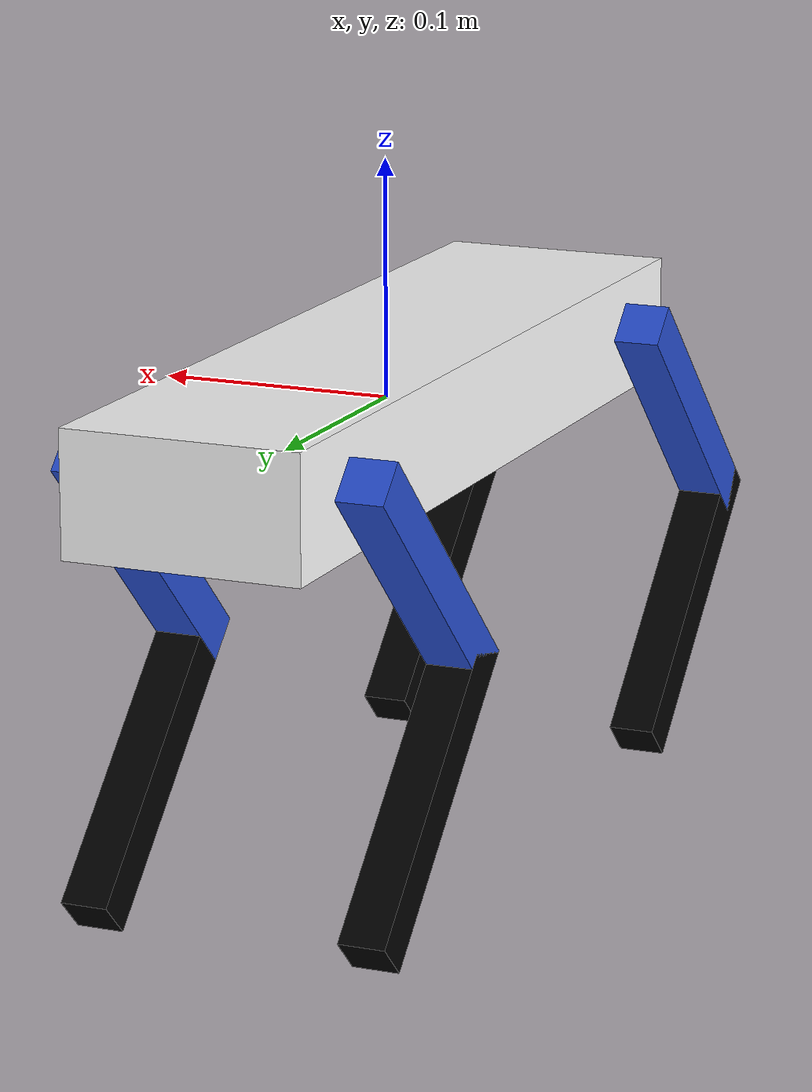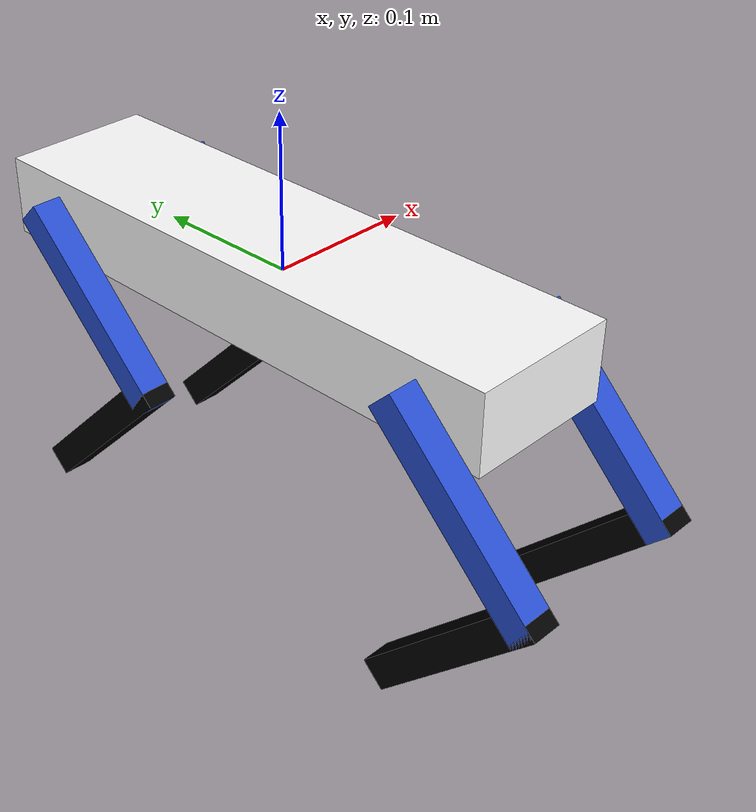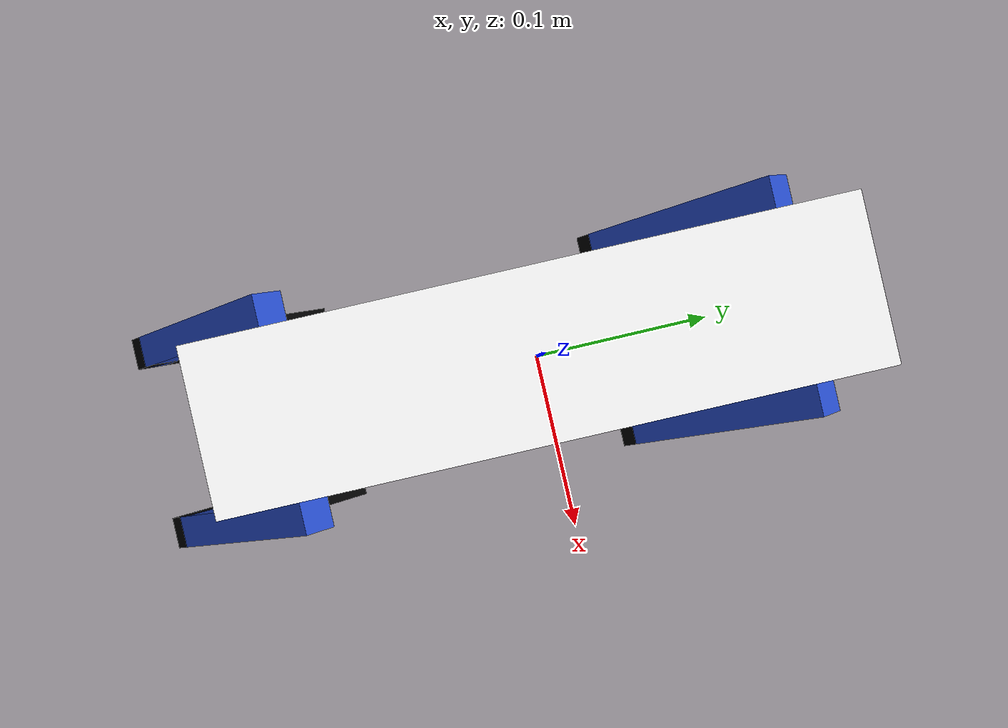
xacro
<?xml version="1.0"?>
<robot name="telos" xmlns:xacro="http://www.ros.org/wiki/xacro">

<!-- ros_control plugin -->
<gazebo>
    <plugin name="gazebo_ros_control" filename="libgazebo_ros_control.so">
        <robotNamespace>/telos</robotNamespace>
        <robotSimType>gazebo_ros_control/DefaultRobotHWSim</robotSimType>
    </plugin>
</gazebo>

<gazebo>
    <plugin name="move" filename="move_plugin.so"/>
</gazebo>

<!-- Constants for robot dimensions -->
<xacro:property name="PI" value="3.1415926535897931"/>

<xacro:property name="rangeRotator" value="1.253294755"/>
<xacro:property name="rangeThigh" value="1.253294755"/>
<xacro:property name="rangeFeet" value="0.785"/>

<xacro:property name="rotatorReduction" value="1.88"/>
<xacro:property name="thighReduction" value="1.88"/>
<xacro:property name="feetReduction" value="1.5"/>

<xacro:property name="corpusMass" value="2.5"/>
<xacro:property name="thighMass" value="0.8"/>

<xacro:property name="feetMass" value="0.1"/>

<xacro:property name="corpusHeight" value="0.052"/>
<xacro:property name="corpusWidth" value="0.1"/>
<xacro:property name="corpusDepth" value="0.39"/>

<xacro:property name="rotatorSize" value="0.0000000000001"/>

<xacro:property name="legHeight" value="0.02"/>
<xacro:property name="legWidth" value="0.02"/>
<xacro:property name="legDepth" value="0.145"/>
<xacro:property name="feetOriginY" value="-0.0625"/>

<!-- Import Rviz colors -->
<xacro:include filename="$(find rrbot_description)/urdf/materials.xacro" />

<!-- Inertia for Thigh and feet -->
<xacro:macro name="default_inertial_thigh">
    <inertial>
        <mass value="${thighMass}"/>
        <inertia ixx="0.000904167" ixy="0.0" ixz="0.0"
         iyy="0.0000732292" iyz="0.0" izz="0.0000904167"/>
    </inertial>
</xacro:macro>

<xacro:macro name="default_inertial_feet" >
    <inertial>
        <mass value="${feetMass}"/>
        <inertia ixx="0,000088021" ixy="0.0" ixz="0.0"
         iyy="0.665365" iyz="0.0" izz="0,000088021"/>

    </inertial>
</xacro:macro>

<link name="base_link">
        <visual>
            <geometry>
                <box size=".1 0.39 0.052"/>
                <box size="${corpusWidth} ${corpusDepth} ${corpusHeight}"/>
            </geometry>
            <origin rpy="0.0 0.0 0.0" xyz="0 0 0"/>
            <material name="white"/>
        </visual>
        <collision>
            <geometry>
                <box size="${corpusWidth} ${corpusDepth} ${corpusHeight}"/>
            </geometry>
        </collision>
        <inertial>
            <mass value="${corpusMass}"/>
            <inertia ixx="0.032250833" ixy="0.0" ixz="0.0"
            iyy="0.002646667" iyz="0.0" izz="0.033770833"/>
        </inertial>
</link>

<xacro:macro name="rotator" params="side direction oX oY oZ">
    <link name="${side}_${direction}_rotator">
        <visual>
            <geometry>
                <box size="${rotatorSize} ${rotatorSize} ${rotatorSize}"/>
            </geometry>
            <origin xyz="0 0 0"/>
            <material name="black"/>
        </visual>
        <inertial>
            <mass value="0.0001"/>
            <inertia ixx="0.00000000001" ixy="0.0" ixz="0.0" iyy="0.00000000001" iyz="0.0" izz="0.00000000001"/>
        </inertial>

    </link>

    <joint name="corpus_to_${side}_${direction}_rotator" type="revolute">
        <axis xyz="0.0 1 0.0"/>
        <limit lower="-${rangeRotator}" upper="${rangeRotator}" effort="1000.0" velocity="0.5"/>
        <parent link="base_link"/>
        <child link="${side}_${direction}_rotator"/>
        <origin xyz="${oX} ${oY} ${oZ}"/>
    </joint>

    <transmission name="${side}_${direction}_rotator_transmission">
        <type>transmission_interface/SimpleTransmission</type>
        <joint name="corpus_to_${side}_${direction}_rotator">
            <hardwareInterface>hardware_interface/EffortJointInterface</hardwareInterface>
        </joint>
        <actuator name="${side}_${direction}_motor">
            <mechanicalReduction>"${rotatorReduction}"</mechanicalReduction>
            <hardwareInterface>hardware_interface/EffortJointInterface</hardwareInterface>
        </actuator>
    </transmission>

</xacro:macro>

<xacro:macro name="thigh" params="side direction oX oY oZ">
    <link name="${side}_${direction}_thigh">
        <visual>
            <geometry>
                <box size="${legWidth} ${legDepth} ${legHeight}"/>
            </geometry>
            <origin xyz="${oX} ${oY} ${oZ}"/>
            <material name="blue"/>
        </visual>
        <collision>
            <geometry>
                <box size="${legWidth} ${legDepth} ${legHeight}"/>
            </geometry>
        </collision>
        <xacro:default_inertial_thigh/>
    </link>

    <joint name="rotator_to_${side}_${direction}_thigh" type="revolute">
        <axis xyz="1 0.0 0.0"/>
        <limit lower="-${rangeThigh}" upper="${rangeThigh}" effort="1000.0" velocity="0.5"/>
        <parent link="${side}_${direction}_rotator"/>
        <child link="${side}_${direction}_thigh"/>
        <origin xyz="0.0 0.0 0.0" rpy="0.785 0.0 0.0"/>
    </joint>

    <transmission name="${side}_${direction}_thigh_transmission">
        <type>transmission_interface/SimpleTransmission</type>
        <joint name="rotator_to_${side}_${direction}_thigh">
            <hardwareInterface>hardware_interface/EffortJointInterface</hardwareInterface>
        </joint>
        <actuator name="${side}_${direction}_thigh_motor">
            <mechanicalReduction>"${thighReduction}"</mechanicalReduction>
            <hardwareInterface>hardware_interface/EffortJointInterface</hardwareInterface>
        </actuator>
    </transmission>

</xacro:macro>

<xacro:macro name="feet" params="side direction oX oY oZ">
    <link name="${side}_${direction}_feet">
        <visual>
            <geometry>
                <box size="${legWidth} ${legDepth} ${legHeight}"/>
            </geometry>
            <origin xyz="0.0 ${feetOriginY} 0.0"/>
            <material name="black"/>
        </visual>
        <collision>
            <geometry>
                <box size="${legWidth} ${legDepth} ${legHeight}"/>
            </geometry>
        </collision>
        <xacro:default_inertial_feet/>
    </link>

    <joint name="thigh_to_${side}_${direction}_feet" type="revolute">
        <axis xyz="1 0.0 0.0"/>
        <limit lower="-${rangeFeet}" upper="${rangeFeet}" effort="1000.0" velocity="0.5"/>
        <parent link="${side}_${direction}_thigh"/>
        <child link="${side}_${direction}_feet"/>
        <origin xyz="${oX} ${oY} ${oZ}" rpy="1.57 0.0 0.0"/>
    </joint>

    <transmission name="${side}_${direction}_feet_transmission">
        <type>transmission_interface/SimpleTransmission</type>
        <joint name="thigh_to_${side}_${direction}_feet">
            <hardwareInterface>hardware_interface/EffortJointInterface</hardwareInterface>
        </joint>
        <actuator name="${side}_${direction}_feet_motor">
            <mechanicalReduction>"${feetReduction}"</mechanicalReduction>
            <hardwareInterface>hardware_interface/EffortJointInterface</hardwareInterface>
        </actuator>
    </transmission>

</xacro:macro>
<!--original for feet:oX=0 oY=-0.125 -->
<xacro:rotator side="right" direction="front" oX="0.06" oY=".15"      oZ="0"/>
<xacro:thigh   side="right" direction="front" oX="0"    oY="-0.0625" oZ="0"/>
<xacro:feet    side="right" direction="front" oX="0"    oY="-0.125"  oZ="0"/>

<xacro:rotator side="left" direction="front" oX="-0.06" oY=".15"      oZ="0"/>
<xacro:thigh   side="left" direction="front" oX="0"    oY="-0.0625" oZ="0"/>
<xacro:feet    side="left" direction="front" oX="0"    oY="-0.125"  oZ="0"/>

<xacro:rotator side="right" direction="back" oX="0.06" oY="-.15"      oZ="0"/>
<xacro:thigh   side="right" direction="back" oX="0"    oY="-0.0625" oZ="0"/>
<xacro:feet    side="right" direction="back" oX="0"    oY="-0.125"  oZ="0"/>

<xacro:rotator side="left" direction="back" oX="-0.06" oY="-.15"      oZ="0"/>
<xacro:thigh   side="left" direction="back" oX="0"    oY="-0.0625" oZ="0"/>
<xacro:feet    side="left" direction="back" oX="0"    oY="-0.125"  oZ="0"/>

</robot>

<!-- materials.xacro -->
<robot xmlns:xacro="http://www.ros.org/wiki/xacro">
    <material name="white">
        <color rgba="1 1 1 1"/>
    </material>
    <material name="bluepurple" >
        <color rgba="0.35294117647058826 0.023529411764705882 0.9372549019607843 1.0" />
    </material>
    <material name="black">
        <color rgba="0 0 0 1"/>
    </material>
</robot>
